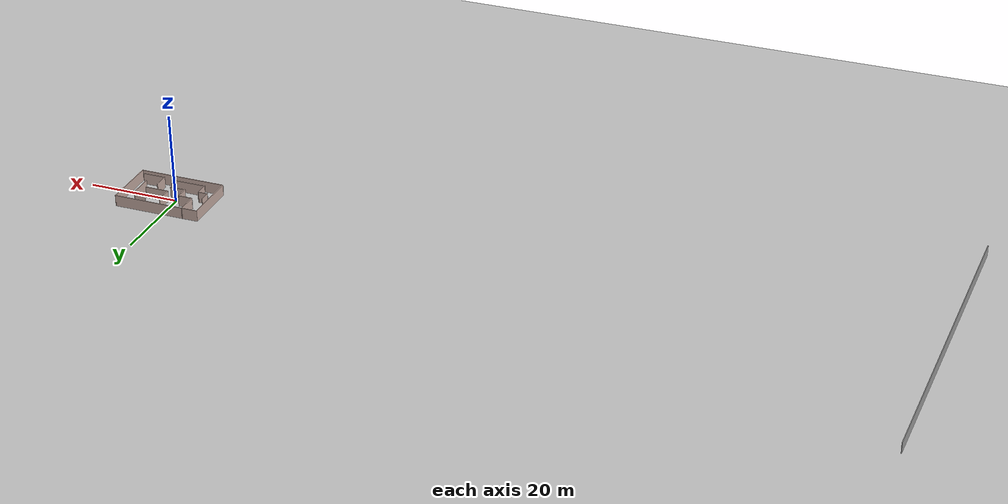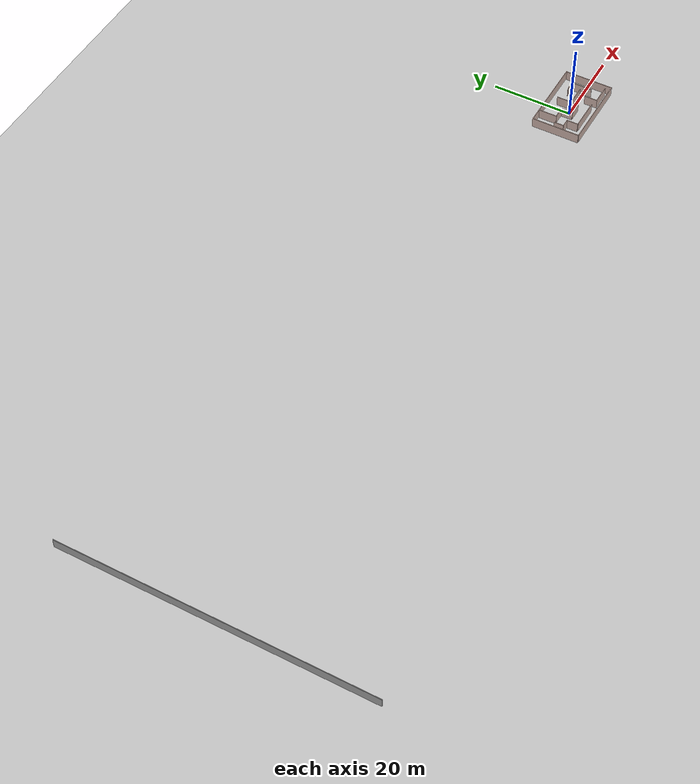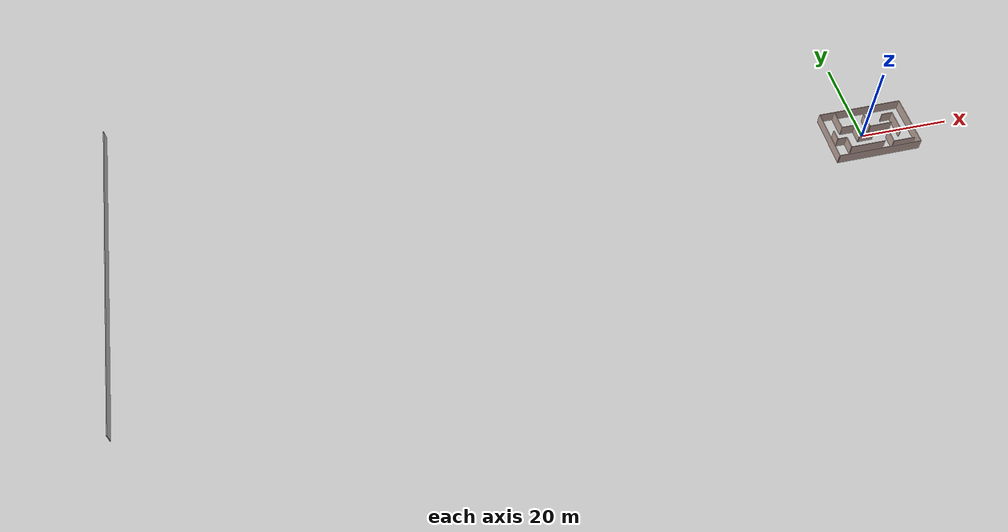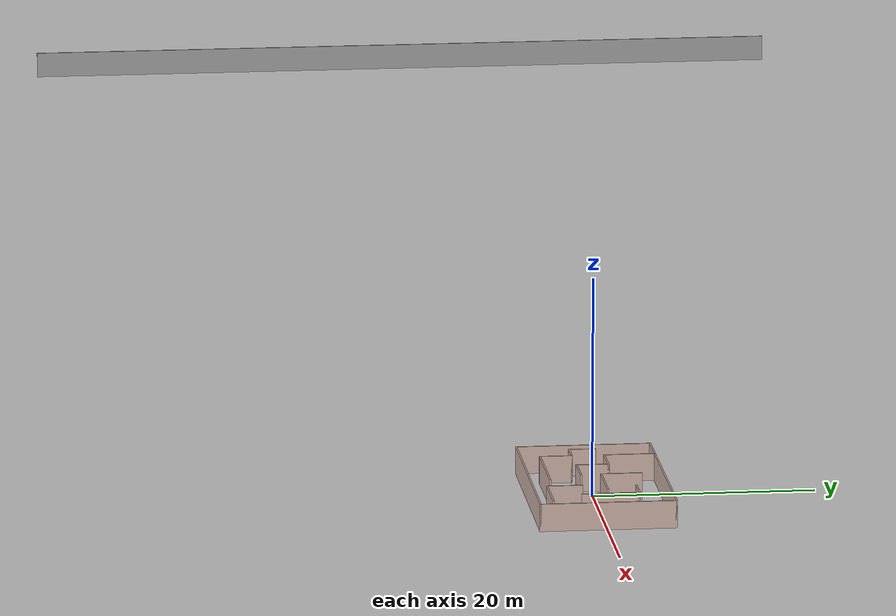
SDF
<sdf version="1.7">
 <world name="default">
  <light name="sun" type="directional">
   <pose>0 0 10 0 -0 0</pose>
   <diffuse>0.8 0.8 0.8 1</diffuse>
   <specular>0.2 0.2 0.2 1</specular>
   <attenuation>
    <range>1000</range>
    <constant>0.9</constant>
    <linear>0.01</linear>
    <quadratic>0.001</quadratic>
   </attenuation>
   <direction>-0.5 0.1 -0.9</direction>
   <spot><inner_angle>0</inner_angle><outer_angle>0</outer_angle><falloff>0</falloff></spot>
  </light>
  <model name="ground_plane">
   <static>1</static>
   <link name="link">
    <collision name="collision">
     <geometry><plane><normal>0 0 1</normal><size>100 100</size></plane></geometry>
     <surface><friction><ode><mu>100</mu><mu2>50</mu2></ode></friction></surface>
    </collision>
    <visual name="visual">
     <cast_shadows>0</cast_shadows>
     <geometry><plane><normal>0 0 1</normal><size>100 100</size></plane></geometry>
     <material>
      <script><uri>file://media/materials/scripts/gazebo.material</uri><name>Gazebo/Grey</name></script>
     </material>
    </visual>
   </link>
  </model>
  <gravity>0 0 -9.8</gravity>
  <magnetic_field>6e-06 2.3e-05 -4.2e-05</magnetic_field>
  <atmosphere type="adiabatic"/>
  <physics type="ode">
   <max_step_size>0.001</max_step_size>
   <real_time_factor>1</real_time_factor>
   <real_time_update_rate>1000</real_time_update_rate>
  </physics>
  <scene><ambient>0.4 0.4 0.4 1</ambient><background>0.7 0.7 0.7 1</background><shadows>1</shadows></scene>
  <audio><device>default</device></audio>
  <spherical_coordinates>
   <surface_model>EARTH_WGS84</surface_model>
   <latitude_deg>0</latitude_deg>
   <longitude_deg>0</longitude_deg>
   <elevation>0</elevation>
   <heading_deg>0</heading_deg>
  </spherical_coordinates>
  <model name="my_bot">
   <link name="base_link">
    <inertial>
     <pose>0.065 0 0.0625 0 -0 0</pose>
     <mass>0.6</mass>
     <inertia>
      <ixx>0.00525625</ixx>
      <ixy>0</ixy>
      <ixz>0.0005625</ixz>
      <iyy>0.00593125</iyy>
      <iyz>0</iyz>
      <izz>0.008275</izz>
     </inertia>
    </inertial>
    <collision name="base_link_fixed_joint_lump__chassis_collision">
     <pose>0.05 0 0.075 0 -0 0</pose>
     <geometry><box><size>0.3 0.3 0.15</size></box></geometry>
    </collision>
    <collision name="base_link_fixed_joint_lump__caster_wheel_collision_1">
     <pose>0.14 0 0 0 -0 0</pose>
     <geometry><sphere><radius>0.05</radius></sphere></geometry>
     <surface><friction><ode><mu>0.01</mu><mu2>0.01</mu2></ode></friction></surface>
    </collision>
    <visual name="base_link_fixed_joint_lump__chassis_visual">
     <pose>0.05 0 0.075 0 -0 0</pose>
     <geometry><box><size>0.3 0.3 0.15</size></box></geometry>
    </visual>
    <visual name="base_link_fixed_joint_lump__caster_wheel_visual_1">
     <pose>0.14 0 0 0 -0 0</pose>
     <geometry><sphere><radius>0.05</radius></sphere></geometry>
     <material>
      <script><name>Gazebo/Black</name><uri>file://media/materials/scripts/gazebo.material</uri></script>
     </material>
    </visual>
   </link>
   <joint name="left_wheel_joint" type="revolute">
    <pose relative_to="base_link">0 0.175 0 -1.57 0 0</pose>
    <parent>base_link</parent>
    <child>left_wheel</child>
    <axis>
     <xyz>0 0 1</xyz>
     <limit><lower>-1e+16</lower><upper>1e+16</upper></limit>
     <dynamics><spring_reference>0</spring_reference><spring_stiffness>0</spring_stiffness></dynamics>
    </axis>
   </joint>
   <link name="left_wheel">
    <pose relative_to="left_wheel_joint">0 0 0 0 -0 0</pose>
    <inertial>
     <mass>0.1</mass>
     <inertia>
      <ixx>7.58333e-05</ixx>
      <ixy>0</ixy>
      <ixz>0</ixz>
      <iyy>7.58333e-05</iyy>
      <iyz>0</iyz>
      <izz>0.000125</izz>
     </inertia>
    </inertial>
    <collision name="left_wheel_collision">
     <geometry><cylinder><length>0.04</length><radius>0.05</radius></cylinder></geometry>
    </collision>
    <visual name="left_wheel_visual">
     <geometry><cylinder><length>0.04</length><radius>0.05</radius></cylinder></geometry>
    </visual>
   </link>
   <joint name="right_wheel_joint" type="revolute">
    <pose relative_to="base_link">0 -0.175 0 1.57 -0 0</pose>
    <parent>base_link</parent>
    <child>right_wheel</child>
    <axis>
     <xyz>0 0 -1</xyz>
     <limit><lower>-1e+16</lower><upper>1e+16</upper></limit>
     <dynamics><spring_reference>0</spring_reference><spring_stiffness>0</spring_stiffness></dynamics>
    </axis>
   </joint>
   <link name="right_wheel">
    <pose relative_to="right_wheel_joint">0 0 0 0 -0 0</pose>
    <inertial>
     <mass>0.1</mass>
     <inertia>
      <ixx>7.58333e-05</ixx>
      <ixy>0</ixy>
      <ixz>0</ixz>
      <iyy>7.58333e-05</iyy>
      <iyz>0</iyz>
      <izz>0.000125</izz>
     </inertia>
    </inertial>
    <collision name="right_wheel_collision">
     <geometry><cylinder><length>0.04</length><radius>0.05</radius></cylinder></geometry>
    </collision>
    <visual name="right_wheel_visual">
     <geometry><cylinder><length>0.04</length><radius>0.05</radius></cylinder></geometry>
    </visual>
   </link>
   <static>0</static>
   <plugin name="skid_steer_drive" filename="libgazebo_ros_diff_drive.so">
    <num_wheel_pairs>1</num_wheel_pairs>
    <left_joint>left_wheel_joint</left_joint>
    <right_joint>right_wheel_joint</right_joint>
    <wheel_separation>0.35</wheel_separation>
    <wheel_diameter>0.1</wheel_diameter>
    <max_wheel_torque>200</max_wheel_torque>
    <max_wheel_acceleration>10</max_wheel_acceleration>
    <odometry_frame>odom</odometry_frame>
    <robot_base_frame>base_link</robot_base_frame>
    <publish_odom>1</publish_odom>
    <publish_odom_tf>1</publish_odom_tf>
    <publish_wheel_tf>tf</publish_wheel_tf>
   </plugin>
   <pose>-0.017104 0.000661 0.050013 -5e-06 9.5e-05 -0.003831</pose>
  </model>
  <model name="test_wall">
   <pose>-77.3647 -0.258712 0 0 -0 0</pose>
   <link name="Wall_12">
    <collision name="Wall_12_Collision">
     <geometry><box><size>12.25 0.15 2.5</size></box></geometry>
     <pose>0 0 1.25 0 -0 0</pose>
    </collision>
    <visual name="Wall_12_Visual">
     <pose>0 0 1.25 0 -0 0</pose>
     <geometry><box><size>12.25 0.15 2.5</size></box></geometry>
     <material>
      <script><uri>file://media/materials/scripts/gazebo.material</uri><name>Gazebo/Grey</name></script>
      <ambient>0.760784 0.662745 0.627451 1</ambient>
     </material>
     <meta><layer>0</layer></meta>
    </visual>
    <pose>88.2798 0.372646 0 0 -0 -1.5708</pose>
   </link>
   <link name="Wall_13">
    <collision name="Wall_13_Collision">
     <geometry><box><size>19.25 0.15 2.5</size></box></geometry>
     <pose>0 0 1.25 0 -0 0</pose>
    </collision>
    <visual name="Wall_13_Visual">
     <pose>0 0 1.25 0 -0 0</pose>
     <geometry><box><size>19.25 0.15 2.5</size></box></geometry>
     <material>
      <script><uri>file://media/materials/scripts/gazebo.material</uri><name>Gazebo/Grey</name></script>
      <ambient>0.760784 0.662745 0.627451 1</ambient>
     </material>
     <meta><layer>0</layer></meta>
    </visual>
    <pose>78.7298 -5.67735 0 0 -0 3.14159</pose>
   </link>
   <link name="Wall_15">
    <collision name="Wall_15_Collision">
     <geometry><box><size>4.75 0.15 2.5</size></box></geometry>
     <pose>0 0 1.25 0 -0 0</pose>
    </collision>
    <visual name="Wall_15_Visual">
     <pose>0 0 1.25 0 -0 0</pose>
     <geometry><box><size>4.75 0.15 2.5</size></box></geometry>
     <material>
      <script><uri>file://media/materials/scripts/gazebo.material</uri><name>Gazebo/Grey</name></script>
      <ambient>0.760784 0.662745 0.627451 1</ambient>
     </material>
     <meta><layer>0</layer></meta>
    </visual>
    <pose>72.6577 4.15364 0 0 -0 -1.5708</pose>
   </link>
   <link name="Wall_16">
    <collision name="Wall_16_Collision">
     <geometry><box><size>3.25 0.15 2.5</size></box></geometry>
     <pose>0 0 1.25 0 -0 0</pose>
    </collision>
    <visual name="Wall_16_Visual">
     <pose>0 0 1.25 0 -0 0</pose>
     <geometry><box><size>3.25 0.15 2.5</size></box></geometry>
     <material>
      <script><uri>file://media/materials/scripts/gazebo.material</uri><name>Gazebo/Grey</name></script>
      <ambient>0.760784 0.662745 0.627451 1</ambient>
     </material>
     <meta><layer>0</layer></meta>
    </visual>
    <pose>74.2077 1.85364 0 0 -0 0</pose>
   </link>
   <link name="Wall_17">
    <collision name="Wall_17_Collision">
     <geometry><box><size>3 0.15 2.5</size></box></geometry>
     <pose>0 0 1.25 0 -0 0</pose>
    </collision>
    <visual name="Wall_17_Visual">
     <pose>0 0 1.25 0 -0 0</pose>
     <geometry><box><size>3 0.15 2.5</size></box></geometry>
     <material>
      <script><uri>file://media/materials/scripts/gazebo.material</uri><name>Gazebo/Grey</name></script>
      <ambient>0.760784 0.662745 0.627451 1</ambient>
     </material>
     <meta><layer>0</layer></meta>
    </visual>
    <pose>75.7577 0.42864 0 0 -0 -1.5708</pose>
   </link>
   <link name="Wall_18">
    <collision name="Wall_18_Collision">
     <geometry><box><size>3.5 0.15 2.5</size></box></geometry>
     <pose>0 0 1.25 0 -0 0</pose>
    </collision>
    <visual name="Wall_18_Visual">
     <pose>0 0 1.25 0 -0 0</pose>
     <geometry><box><size>3.5 0.15 2.5</size></box></geometry>
     <material>
      <script><uri>file://media/materials/scripts/gazebo.material</uri><name>Gazebo/Grey</name></script>
      <ambient>0.760784 0.662745 0.627451 1</ambient>
     </material>
     <meta><layer>0</layer></meta>
    </visual>
    <pose>77.4327 -0.99636 0 0 -0 0</pose>
   </link>
   <link name="Wall_2">
    <collision name="Wall_2_Collision">
     <geometry><box><size>75.75 0.15 2.5</size></box></geometry>
     <pose>0 0 1.25 0 -0 0</pose>
    </collision>
    <visual name="Wall_2_Visual">
     <pose>0 0 1.25 0 -0 0</pose>
     <geometry><box><size>75.75 0.15 2.5</size></box></geometry>
     <material>
      <script><uri>file://media/materials/scripts/gazebo.material</uri><name>Gazebo/Grey</name></script>
      <ambient>1 1 1 1</ambient>
     </material>
     <meta><layer>0</layer></meta>
    </visual>
    <pose>-88.2798 -1e-06 0 0 -0 1.5708</pose>
   </link>
   <link name="Wall_21">
    <collision name="Wall_21_Collision">
     <geometry><box><size>5.25 0.15 2.5</size></box></geometry>
     <pose>0 0 1.25 0 -0 0</pose>
    </collision>
    <visual name="Wall_21_Visual">
     <pose>0 0 1.25 0 -0 0</pose>
     <geometry><box><size>5.25 0.15 2.5</size></box></geometry>
     <material>
      <script><uri>file://media/materials/scripts/gazebo.material</uri><name>Gazebo/Grey</name></script>
      <ambient>0.760784 0.662745 0.627451 1</ambient>
     </material>
     <meta><layer>0</layer></meta>
    </visual>
    <pose>81.4705 0.817021 0 0 -0 3.14159</pose>
   </link>
   <link name="Wall_22">
    <collision name="Wall_22_Collision">
     <geometry><box><size>3.75 0.15 2.5</size></box></geometry>
     <pose>0 0 1.25 0 -0 0</pose>
    </collision>
    <visual name="Wall_22_Visual">
     <pose>0 0 1.25 0 -0 0</pose>
     <geometry><box><size>3.75 0.15 2.5</size></box></geometry>
     <material>
      <script><uri>file://media/materials/scripts/gazebo.material</uri><name>Gazebo/Grey</name></script>
      <ambient>0.760784 0.662745 0.627451 1</ambient>
     </material>
     <meta><layer>0</layer></meta>
    </visual>
    <pose>78.9205 2.61702 0 0 -0 1.5708</pose>
   </link>
   <link name="Wall_24">
    <collision name="Wall_24_Collision">
     <geometry><box><size>8 0.15 2.5</size></box></geometry>
     <pose>0 0 1.25 0 -0 0</pose>
    </collision>
    <visual name="Wall_24_Visual">
     <pose>0 0 1.25 0 -0 0</pose>
     <geometry><box><size>8 0.15 2.5</size></box></geometry>
     <material>
      <script><uri>file://media/materials/scripts/gazebo.material</uri><name>Gazebo/Grey</name></script>
      <ambient>0.760784 0.662745 0.627451 1</ambient>
     </material>
     <meta><layer>0</layer></meta>
    </visual>
    <pose>76.5475 -3.92409 0 0 -0 0</pose>
   </link>
   <link name="Wall_28">
    <collision name="Wall_28_Collision">
     <geometry><box><size>3 0.15 2.5</size></box></geometry>
     <pose>0 0 1.25 0 -0 0</pose>
    </collision>
    <visual name="Wall_28_Visual">
     <pose>0 0 1.25 0 -0 0</pose>
     <geometry><box><size>3 0.15 2.5</size></box></geometry>
     <material>
      <script><uri>file://media/materials/scripts/gazebo.material</uri><name>Gazebo/Grey</name></script>
      <ambient>0.760784 0.662745 0.627451 1</ambient>
     </material>
     <meta><layer>0</layer></meta>
    </visual>
    <pose>72.6225 -2.4991 0 0 -0 1.5708</pose>
   </link>
   <link name="Wall_29">
    <collision name="Wall_29_Collision">
     <geometry><box><size>2.25 0.15 2.5</size></box></geometry>
     <pose>0 0 1.25 0 -0 0</pose>
    </collision>
    <visual name="Wall_29_Visual">
     <pose>0 0 1.25 0 -0 0</pose>
     <geometry><box><size>2.25 0.15 2.5</size></box></geometry>
     <material>
      <script><uri>file://media/materials/scripts/gazebo.material</uri><name>Gazebo/Grey</name></script>
      <ambient>0.760784 0.662745 0.627451 1</ambient>
     </material>
     <meta><layer>0</layer></meta>
    </visual>
    <pose>71.5725 -1.0741 0 0 -0 3.14159</pose>
   </link>
   <link name="Wall_30">
    <collision name="Wall_30_Collision">
     <geometry><box><size>2.5 0.15 2.5</size></box></geometry>
     <pose>0 0 1.25 0 -0 0</pose>
    </collision>
    <visual name="Wall_30_Visual">
     <pose>0 0 1.25 0 -0 0</pose>
     <geometry><box><size>2.5 0.15 2.5</size></box></geometry>
     <material>
      <script><uri>file://media/materials/scripts/gazebo.material</uri><name>Gazebo/Grey</name></script>
      <ambient>0.760784 0.662745 0.627451 1</ambient>
     </material>
     <meta><layer>0</layer></meta>
    </visual>
    <pose>70.5225 0.100905 0 0 -0 1.5708</pose>
   </link>
   <link name="Wall_32">
    <collision name="Wall_32_Collision">
     <geometry><box><size>2.5 0.15 2.5</size></box></geometry>
     <pose>0 0 1.25 0 -0 0</pose>
    </collision>
    <visual name="Wall_32_Visual">
     <pose>0 0 1.25 0 -0 0</pose>
     <geometry><box><size>2.5 0.15 2.5</size></box></geometry>
     <material>
      <script><uri>file://media/materials/scripts/gazebo.material</uri><name>Gazebo/Grey</name></script>
      <ambient>0.760784 0.662745 0.627451 1</ambient>
     </material>
     <meta><layer>0</layer></meta>
    </visual>
    <pose>84.1401 3.49862 0 0 -0 0</pose>
   </link>
   <link name="Wall_33">
    <collision name="Wall_33_Collision">
     <geometry><box><size>5.25 0.15 2.5</size></box></geometry>
     <pose>0 0 1.25 0 -0 0</pose>
    </collision>
    <visual name="Wall_33_Visual">
     <pose>0 0 1.25 0 -0 0</pose>
     <geometry><box><size>5.25 0.15 2.5</size></box></geometry>
     <material>
      <script><uri>file://media/materials/scripts/gazebo.material</uri><name>Gazebo/Grey</name></script>
      <ambient>0.760784 0.662745 0.627451 1</ambient>
     </material>
     <meta><layer>0</layer></meta>
    </visual>
    <pose>85.3151 0.948624 0 0 -0 -1.5708</pose>
   </link>
   <link name="Wall_35">
    <collision name="Wall_35_Collision">
     <geometry><box><size>3.25 0.15 2.5</size></box></geometry>
     <pose>0 0 1.25 0 -0 0</pose>
    </collision>
    <visual name="Wall_35_Visual">
     <pose>0 0 1.25 0 -0 0</pose>
     <geometry><box><size>3.25 0.15 2.5</size></box></geometry>
     <material>
      <script><uri>file://media/materials/scripts/gazebo.material</uri><name>Gazebo/Grey</name></script>
      <ambient>0.760784 0.662745 0.627451 1</ambient>
     </material>
     <meta><layer>0</layer></meta>
    </visual>
    <pose>82.4374 -2.87087 0 0 -0 -1.5708</pose>
   </link>
   <link name="Wall_36">
    <collision name="Wall_36_Collision">
     <geometry><box><size>5 0.15 2.5</size></box></geometry>
     <pose>0 0 1.25 0 -0 0</pose>
    </collision>
    <visual name="Wall_36_Visual">
     <pose>0 0 1.25 0 -0 0</pose>
     <geometry><box><size>5 0.15 2.5</size></box></geometry>
     <material>
      <script><uri>file://media/materials/scripts/gazebo.material</uri><name>Gazebo/Grey</name></script>
      <ambient>0.760784 0.662745 0.627451 1</ambient>
     </material>
     <meta><layer>0</layer></meta>
    </visual>
    <pose>84.8624 -4.42087 0 0 -0 0</pose>
   </link>
   <link name="Wall_7">
    <collision name="Wall_7_Collision">
     <geometry><box><size>12.25 0.15 2.5</size></box></geometry>
     <pose>0 0 1.25 0 -0 0</pose>
    </collision>
    <visual name="Wall_7_Visual">
     <pose>0 0 1.25 0 -0 0</pose>
     <geometry><box><size>12.25 0.15 2.5</size></box></geometry>
     <material>
      <script><uri>file://media/materials/scripts/gazebo.material</uri><name>Gazebo/Grey</name></script>
      <ambient>0.760784 0.662745 0.627451 1</ambient>
     </material>
     <meta><layer>0</layer></meta>
    </visual>
    <pose>69.1798 0.372646 0 0 -0 1.5708</pose>
   </link>
   <link name="Wall_8">
    <collision name="Wall_8_Collision">
     <geometry><box><size>19.25 0.15 2.5</size></box></geometry>
     <pose>0 0 1.25 0 -0 0</pose>
    </collision>
    <visual name="Wall_8_Visual">
     <pose>0 0 1.25 0 -0 0</pose>
     <geometry><box><size>19.25 0.15 2.5</size></box></geometry>
     <material>
      <script><uri>file://media/materials/scripts/gazebo.material</uri><name>Gazebo/Grey</name></script>
      <ambient>0.760784 0.662745 0.627451 1</ambient>
     </material>
     <meta><layer>0</layer></meta>
    </visual>
    <pose>78.7298 6.42265 0 0 -0 0</pose>
   </link>
   <static>1</static>
  </model>
 </world>
</sdf>
